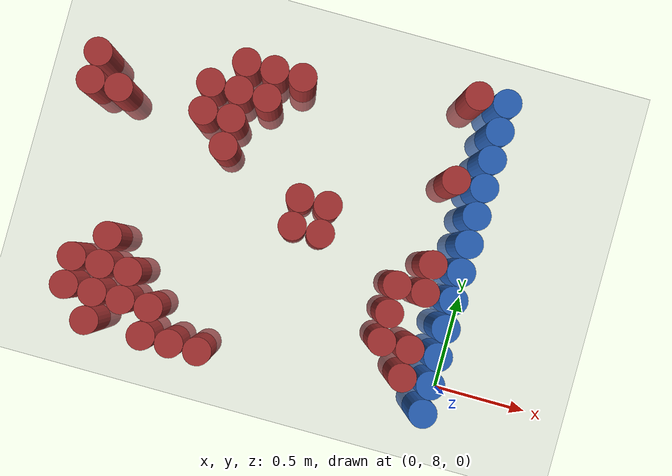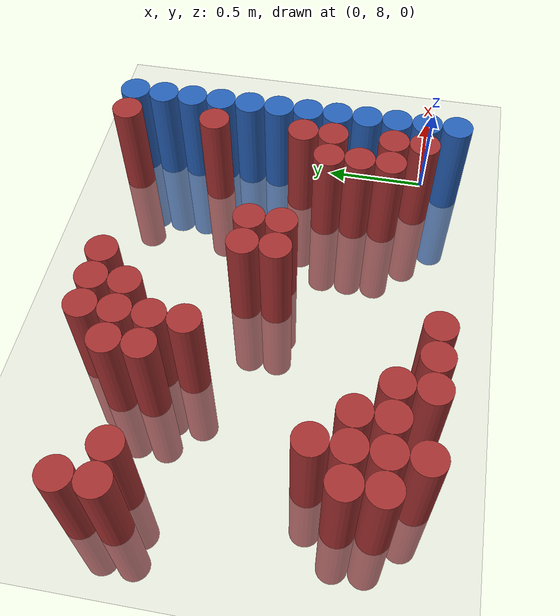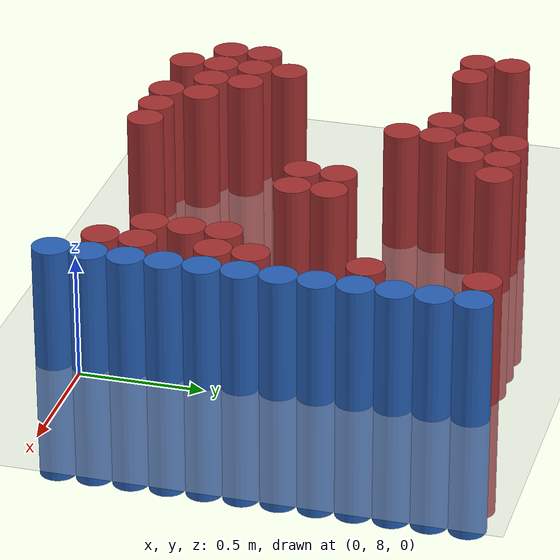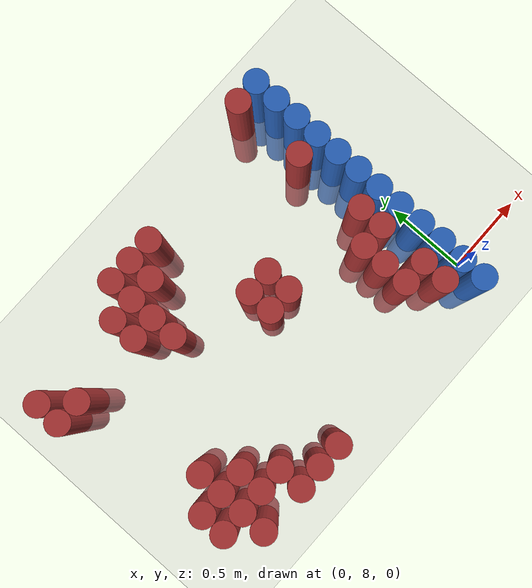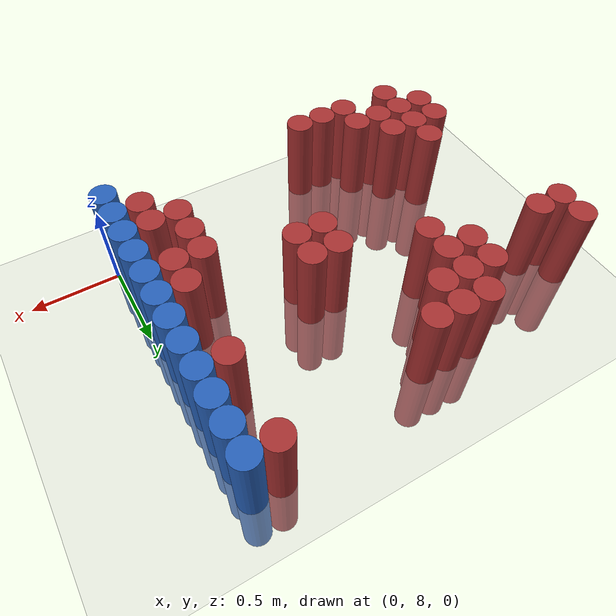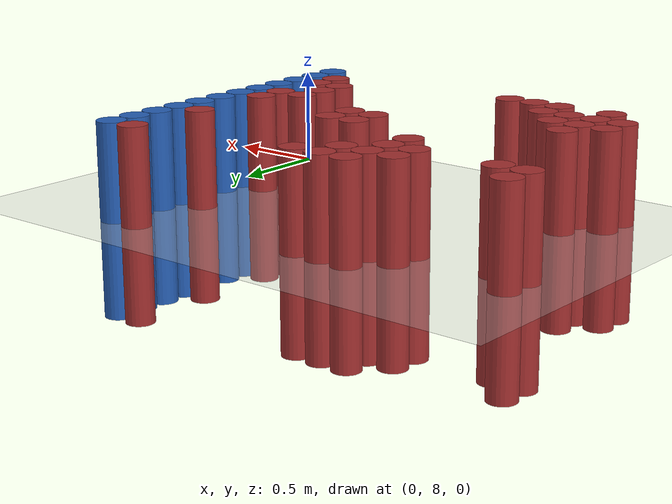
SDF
<sdf version="1.6">
 <world name="default">
  <model name="ground_plane">
   <static>1</static>
   <link name="link">
    <collision name="collision">
     <geometry><plane><normal>0 0 1</normal><size>100 100</size></plane></geometry>
     <surface><friction><ode><mu>100</mu><mu2>50</mu2></ode></friction></surface>
    </collision>
    <visual name="visual">
     <cast_shadows>0</cast_shadows>
     <geometry><plane><normal>0 0 1</normal><size>100 100</size></plane></geometry>
     <material>
      <script><uri>file://media/materials/scripts/gazebo.material</uri><name>Gazebo/Grey</name></script>
     </material>
    </visual>
   </link>
  </model>
  <model name="unit_cylinder_168">
   <static>1</static>
   <pose>-2.175000 9.075000 0.000000 0.000000 0.000000 0.000000</pose>
   <link name="link">
    <inertial>
     <mass>1</mass>
     <inertia><ixx>0.145833</ixx><ixy>0</ixy><ixz>0</ixz><iyy>0.145833</iyy><iyz>0</iyz><izz>0.125</izz></inertia>
    </inertial>
    <collision name="collision">
     <geometry><cylinder><radius>0.075000</radius><length>1</length></cylinder></geometry>
    </collision>
    <visual name="visual">
     <geometry><cylinder><radius>0.075000</radius><length>1</length></cylinder></geometry>
     <material>
      <ambient>0.648000 0.192000 0.192000 1</ambient>
      <diffuse>0.648000 0.192000 0.192000 1</diffuse>
     </material>
     <material>
      <script><name>Gazebo/Grey</name><uri>file://media/materials/scripts/gazebo.material</uri></script>
     </material>
    </visual>
   </link>
  </model>
  <model name="unit_cylinder_169">
   <static>1</static>
   <pose>-2.175000 9.225000 0.000000 0.000000 0.000000 0.000000</pose>
   <link name="link">
    <inertial>
     <mass>1</mass>
     <inertia><ixx>0.145833</ixx><ixy>0</ixy><ixz>0</ixz><iyy>0.145833</iyy><iyz>0</iyz><izz>0.125</izz></inertia>
    </inertial>
    <collision name="collision">
     <geometry><cylinder><radius>0.075000</radius><length>1</length></cylinder></geometry>
    </collision>
    <visual name="visual">
     <geometry><cylinder><radius>0.075000</radius><length>1</length></cylinder></geometry>
     <material>
      <ambient>0.648000 0.192000 0.192000 1</ambient>
      <diffuse>0.648000 0.192000 0.192000 1</diffuse>
     </material>
     <material>
      <script><name>Gazebo/Grey</name><uri>file://media/materials/scripts/gazebo.material</uri></script>
     </material>
    </visual>
   </link>
  </model>
  <model name="unit_cylinder_170">
   <static>1</static>
   <pose>-2.025000 8.025000 0.000000 0.000000 0.000000 0.000000</pose>
   <link name="link">
    <inertial>
     <mass>1</mass>
     <inertia><ixx>0.145833</ixx><ixy>0</ixy><ixz>0</ixz><iyy>0.145833</iyy><iyz>0</iyz><izz>0.125</izz></inertia>
    </inertial>
    <collision name="collision">
     <geometry><cylinder><radius>0.075000</radius><length>1</length></cylinder></geometry>
    </collision>
    <visual name="visual">
     <geometry><cylinder><radius>0.075000</radius><length>1</length></cylinder></geometry>
     <material>
      <ambient>0.648000 0.192000 0.192000 1</ambient>
      <diffuse>0.648000 0.192000 0.192000 1</diffuse>
     </material>
     <material>
      <script><name>Gazebo/Grey</name><uri>file://media/materials/scripts/gazebo.material</uri></script>
     </material>
    </visual>
   </link>
  </model>
  <model name="unit_cylinder_171">
   <static>1</static>
   <pose>-2.025000 8.175000 0.000000 0.000000 0.000000 0.000000</pose>
   <link name="link">
    <inertial>
     <mass>1</mass>
     <inertia><ixx>0.145833</ixx><ixy>0</ixy><ixz>0</ixz><iyy>0.145833</iyy><iyz>0</iyz><izz>0.125</izz></inertia>
    </inertial>
    <collision name="collision">
     <geometry><cylinder><radius>0.075000</radius><length>1</length></cylinder></geometry>
    </collision>
    <visual name="visual">
     <geometry><cylinder><radius>0.075000</radius><length>1</length></cylinder></geometry>
     <material>
      <ambient>0.648000 0.192000 0.192000 1</ambient>
      <diffuse>0.648000 0.192000 0.192000 1</diffuse>
     </material>
     <material>
      <script><name>Gazebo/Grey</name><uri>file://media/materials/scripts/gazebo.material</uri></script>
     </material>
    </visual>
   </link>
  </model>
  <model name="unit_cylinder_172">
   <static>1</static>
   <pose>-2.025000 9.075000 0.000000 0.000000 0.000000 0.000000</pose>
   <link name="link">
    <inertial>
     <mass>1</mass>
     <inertia><ixx>0.145833</ixx><ixy>0</ixy><ixz>0</ixz><iyy>0.145833</iyy><iyz>0</iyz><izz>0.125</izz></inertia>
    </inertial>
    <collision name="collision">
     <geometry><cylinder><radius>0.075000</radius><length>1</length></cylinder></geometry>
    </collision>
    <visual name="visual">
     <geometry><cylinder><radius>0.075000</radius><length>1</length></cylinder></geometry>
     <material>
      <ambient>0.648000 0.192000 0.192000 1</ambient>
      <diffuse>0.648000 0.192000 0.192000 1</diffuse>
     </material>
     <material>
      <script><name>Gazebo/Grey</name><uri>file://media/materials/scripts/gazebo.material</uri></script>
     </material>
    </visual>
   </link>
  </model>
  <model name="unit_cylinder_177">
   <static>1</static>
   <pose>-1.875000 7.875000 0.000000 0.000000 0.000000 0.000000</pose>
   <link name="link">
    <inertial>
     <mass>1</mass>
     <inertia><ixx>0.145833</ixx><ixy>0</ixy><ixz>0</ixz><iyy>0.145833</iyy><iyz>0</iyz><izz>0.125</izz></inertia>
    </inertial>
    <collision name="collision">
     <geometry><cylinder><radius>0.075000</radius><length>1</length></cylinder></geometry>
    </collision>
    <visual name="visual">
     <geometry><cylinder><radius>0.075000</radius><length>1</length></cylinder></geometry>
     <material>
      <ambient>0.648000 0.192000 0.192000 1</ambient>
      <diffuse>0.648000 0.192000 0.192000 1</diffuse>
     </material>
     <material>
      <script><name>Gazebo/Grey</name><uri>file://media/materials/scripts/gazebo.material</uri></script>
     </material>
    </visual>
   </link>
  </model>
  <model name="unit_cylinder_178">
   <static>1</static>
   <pose>-1.875000 8.025000 0.000000 0.000000 0.000000 0.000000</pose>
   <link name="link">
    <inertial>
     <mass>1</mass>
     <inertia><ixx>0.145833</ixx><ixy>0</ixy><ixz>0</ixz><iyy>0.145833</iyy><iyz>0</iyz><izz>0.125</izz></inertia>
    </inertial>
    <collision name="collision">
     <geometry><cylinder><radius>0.075000</radius><length>1</length></cylinder></geometry>
    </collision>
    <visual name="visual">
     <geometry><cylinder><radius>0.075000</radius><length>1</length></cylinder></geometry>
     <material>
      <ambient>0.648000 0.192000 0.192000 1</ambient>
      <diffuse>0.648000 0.192000 0.192000 1</diffuse>
     </material>
     <material>
      <script><name>Gazebo/Grey</name><uri>file://media/materials/scripts/gazebo.material</uri></script>
     </material>
    </visual>
   </link>
  </model>
  <model name="unit_cylinder_179">
   <static>1</static>
   <pose>-1.875000 8.175000 0.000000 0.000000 0.000000 0.000000</pose>
   <link name="link">
    <inertial>
     <mass>1</mass>
     <inertia><ixx>0.145833</ixx><ixy>0</ixy><ixz>0</ixz><iyy>0.145833</iyy><iyz>0</iyz><izz>0.125</izz></inertia>
    </inertial>
    <collision name="collision">
     <geometry><cylinder><radius>0.075000</radius><length>1</length></cylinder></geometry>
    </collision>
    <visual name="visual">
     <geometry><cylinder><radius>0.075000</radius><length>1</length></cylinder></geometry>
     <material>
      <ambient>0.648000 0.192000 0.192000 1</ambient>
      <diffuse>0.648000 0.192000 0.192000 1</diffuse>
     </material>
     <material>
      <script><name>Gazebo/Grey</name><uri>file://media/materials/scripts/gazebo.material</uri></script>
     </material>
    </visual>
   </link>
  </model>
  <model name="unit_cylinder_180">
   <static>1</static>
   <pose>-1.875000 8.325000 0.000000 0.000000 0.000000 0.000000</pose>
   <link name="link">
    <inertial>
     <mass>1</mass>
     <inertia><ixx>0.145833</ixx><ixy>0</ixy><ixz>0</ixz><iyy>0.145833</iyy><iyz>0</iyz><izz>0.125</izz></inertia>
    </inertial>
    <collision name="collision">
     <geometry><cylinder><radius>0.075000</radius><length>1</length></cylinder></geometry>
    </collision>
    <visual name="visual">
     <geometry><cylinder><radius>0.075000</radius><length>1</length></cylinder></geometry>
     <material>
      <ambient>0.648000 0.192000 0.192000 1</ambient>
      <diffuse>0.648000 0.192000 0.192000 1</diffuse>
     </material>
     <material>
      <script><name>Gazebo/Grey</name><uri>file://media/materials/scripts/gazebo.material</uri></script>
     </material>
    </visual>
   </link>
  </model>
  <model name="unit_cylinder_188">
   <static>1</static>
   <pose>-1.725000 8.025000 0.000000 0.000000 0.000000 0.000000</pose>
   <link name="link">
    <inertial>
     <mass>1</mass>
     <inertia><ixx>0.145833</ixx><ixy>0</ixy><ixz>0</ixz><iyy>0.145833</iyy><iyz>0</iyz><izz>0.125</izz></inertia>
    </inertial>
    <collision name="collision">
     <geometry><cylinder><radius>0.075000</radius><length>1</length></cylinder></geometry>
    </collision>
    <visual name="visual">
     <geometry><cylinder><radius>0.075000</radius><length>1</length></cylinder></geometry>
     <material>
      <ambient>0.648000 0.192000 0.192000 1</ambient>
      <diffuse>0.648000 0.192000 0.192000 1</diffuse>
     </material>
     <material>
      <script><name>Gazebo/Grey</name><uri>file://media/materials/scripts/gazebo.material</uri></script>
     </material>
    </visual>
   </link>
  </model>
  <model name="unit_cylinder_189">
   <static>1</static>
   <pose>-1.725000 8.175000 0.000000 0.000000 0.000000 0.000000</pose>
   <link name="link">
    <inertial>
     <mass>1</mass>
     <inertia><ixx>0.145833</ixx><ixy>0</ixy><ixz>0</ixz><iyy>0.145833</iyy><iyz>0</iyz><izz>0.125</izz></inertia>
    </inertial>
    <collision name="collision">
     <geometry><cylinder><radius>0.075000</radius><length>1</length></cylinder></geometry>
    </collision>
    <visual name="visual">
     <geometry><cylinder><radius>0.075000</radius><length>1</length></cylinder></geometry>
     <material>
      <ambient>0.648000 0.192000 0.192000 1</ambient>
      <diffuse>0.648000 0.192000 0.192000 1</diffuse>
     </material>
     <material>
      <script><name>Gazebo/Grey</name><uri>file://media/materials/scripts/gazebo.material</uri></script>
     </material>
    </visual>
   </link>
  </model>
  <model name="unit_cylinder_197">
   <static>1</static>
   <pose>-1.575000 7.875000 0.000000 0.000000 0.000000 0.000000</pose>
   <link name="link">
    <inertial>
     <mass>1</mass>
     <inertia><ixx>0.145833</ixx><ixy>0</ixy><ixz>0</ixz><iyy>0.145833</iyy><iyz>0</iyz><izz>0.125</izz></inertia>
    </inertial>
    <collision name="collision">
     <geometry><cylinder><radius>0.075000</radius><length>1</length></cylinder></geometry>
    </collision>
    <visual name="visual">
     <geometry><cylinder><radius>0.075000</radius><length>1</length></cylinder></geometry>
     <material>
      <ambient>0.648000 0.192000 0.192000 1</ambient>
      <diffuse>0.648000 0.192000 0.192000 1</diffuse>
     </material>
     <material>
      <script><name>Gazebo/Grey</name><uri>file://media/materials/scripts/gazebo.material</uri></script>
     </material>
    </visual>
   </link>
  </model>
  <model name="unit_cylinder_198">
   <static>1</static>
   <pose>-1.575000 8.025000 0.000000 0.000000 0.000000 0.000000</pose>
   <link name="link">
    <inertial>
     <mass>1</mass>
     <inertia><ixx>0.145833</ixx><ixy>0</ixy><ixz>0</ixz><iyy>0.145833</iyy><iyz>0</iyz><izz>0.125</izz></inertia>
    </inertial>
    <collision name="collision">
     <geometry><cylinder><radius>0.075000</radius><length>1</length></cylinder></geometry>
    </collision>
    <visual name="visual">
     <geometry><cylinder><radius>0.075000</radius><length>1</length></cylinder></geometry>
     <material>
      <ambient>0.648000 0.192000 0.192000 1</ambient>
      <diffuse>0.648000 0.192000 0.192000 1</diffuse>
     </material>
     <material>
      <script><name>Gazebo/Grey</name><uri>file://media/materials/scripts/gazebo.material</uri></script>
     </material>
    </visual>
   </link>
  </model>
  <model name="unit_cylinder_199">
   <static>1</static>
   <pose>-1.575000 9.075000 0.000000 0.000000 0.000000 0.000000</pose>
   <link name="link">
    <inertial>
     <mass>1</mass>
     <inertia><ixx>0.145833</ixx><ixy>0</ixy><ixz>0</ixz><iyy>0.145833</iyy><iyz>0</iyz><izz>0.125</izz></inertia>
    </inertial>
    <collision name="collision">
     <geometry><cylinder><radius>0.075000</radius><length>1</length></cylinder></geometry>
    </collision>
    <visual name="visual">
     <geometry><cylinder><radius>0.075000</radius><length>1</length></cylinder></geometry>
     <material>
      <ambient>0.648000 0.192000 0.192000 1</ambient>
      <diffuse>0.648000 0.192000 0.192000 1</diffuse>
     </material>
     <material>
      <script><name>Gazebo/Grey</name><uri>file://media/materials/scripts/gazebo.material</uri></script>
     </material>
    </visual>
   </link>
  </model>
  <model name="unit_cylinder_200">
   <static>1</static>
   <pose>-1.575000 9.225000 0.000000 0.000000 0.000000 0.000000</pose>
   <link name="link">
    <inertial>
     <mass>1</mass>
     <inertia><ixx>0.145833</ixx><ixy>0</ixy><ixz>0</ixz><iyy>0.145833</iyy><iyz>0</iyz><izz>0.125</izz></inertia>
    </inertial>
    <collision name="collision">
     <geometry><cylinder><radius>0.075000</radius><length>1</length></cylinder></geometry>
    </collision>
    <visual name="visual">
     <geometry><cylinder><radius>0.075000</radius><length>1</length></cylinder></geometry>
     <material>
      <ambient>0.648000 0.192000 0.192000 1</ambient>
      <diffuse>0.648000 0.192000 0.192000 1</diffuse>
     </material>
     <material>
      <script><name>Gazebo/Grey</name><uri>file://media/materials/scripts/gazebo.material</uri></script>
     </material>
    </visual>
   </link>
  </model>
  <model name="unit_cylinder_205">
   <static>1</static>
   <pose>-1.425000 7.875000 0.000000 0.000000 0.000000 0.000000</pose>
   <link name="link">
    <inertial>
     <mass>1</mass>
     <inertia><ixx>0.145833</ixx><ixy>0</ixy><ixz>0</ixz><iyy>0.145833</iyy><iyz>0</iyz><izz>0.125</izz></inertia>
    </inertial>
    <collision name="collision">
     <geometry><cylinder><radius>0.075000</radius><length>1</length></cylinder></geometry>
    </collision>
    <visual name="visual">
     <geometry><cylinder><radius>0.075000</radius><length>1</length></cylinder></geometry>
     <material>
      <ambient>0.648000 0.192000 0.192000 1</ambient>
      <diffuse>0.648000 0.192000 0.192000 1</diffuse>
     </material>
     <material>
      <script><name>Gazebo/Grey</name><uri>file://media/materials/scripts/gazebo.material</uri></script>
     </material>
    </visual>
   </link>
  </model>
  <model name="unit_cylinder_206">
   <static>1</static>
   <pose>-1.425000 8.925000 0.000000 0.000000 0.000000 0.000000</pose>
   <link name="link">
    <inertial>
     <mass>1</mass>
     <inertia><ixx>0.145833</ixx><ixy>0</ixy><ixz>0</ixz><iyy>0.145833</iyy><iyz>0</iyz><izz>0.125</izz></inertia>
    </inertial>
    <collision name="collision">
     <geometry><cylinder><radius>0.075000</radius><length>1</length></cylinder></geometry>
    </collision>
    <visual name="visual">
     <geometry><cylinder><radius>0.075000</radius><length>1</length></cylinder></geometry>
     <material>
      <ambient>0.648000 0.192000 0.192000 1</ambient>
      <diffuse>0.648000 0.192000 0.192000 1</diffuse>
     </material>
     <material>
      <script><name>Gazebo/Grey</name><uri>file://media/materials/scripts/gazebo.material</uri></script>
     </material>
    </visual>
   </link>
  </model>
  <model name="unit_cylinder_207">
   <static>1</static>
   <pose>-1.425000 9.075000 0.000000 0.000000 0.000000 0.000000</pose>
   <link name="link">
    <inertial>
     <mass>1</mass>
     <inertia><ixx>0.145833</ixx><ixy>0</ixy><ixz>0</ixz><iyy>0.145833</iyy><iyz>0</iyz><izz>0.125</izz></inertia>
    </inertial>
    <collision name="collision">
     <geometry><cylinder><radius>0.075000</radius><length>1</length></cylinder></geometry>
    </collision>
    <visual name="visual">
     <geometry><cylinder><radius>0.075000</radius><length>1</length></cylinder></geometry>
     <material>
      <ambient>0.648000 0.192000 0.192000 1</ambient>
      <diffuse>0.648000 0.192000 0.192000 1</diffuse>
     </material>
     <material>
      <script><name>Gazebo/Grey</name><uri>file://media/materials/scripts/gazebo.material</uri></script>
     </material>
    </visual>
   </link>
  </model>
  <model name="unit_cylinder_208">
   <static>1</static>
   <pose>-1.425000 9.225000 0.000000 0.000000 0.000000 0.000000</pose>
   <link name="link">
    <inertial>
     <mass>1</mass>
     <inertia><ixx>0.145833</ixx><ixy>0</ixy><ixz>0</ixz><iyy>0.145833</iyy><iyz>0</iyz><izz>0.125</izz></inertia>
    </inertial>
    <collision name="collision">
     <geometry><cylinder><radius>0.075000</radius><length>1</length></cylinder></geometry>
    </collision>
    <visual name="visual">
     <geometry><cylinder><radius>0.075000</radius><length>1</length></cylinder></geometry>
     <material>
      <ambient>0.648000 0.192000 0.192000 1</ambient>
      <diffuse>0.648000 0.192000 0.192000 1</diffuse>
     </material>
     <material>
      <script><name>Gazebo/Grey</name><uri>file://media/materials/scripts/gazebo.material</uri></script>
     </material>
    </visual>
   </link>
  </model>
  <model name="unit_cylinder_209">
   <static>1</static>
   <pose>-1.425000 9.375000 0.000000 0.000000 0.000000 0.000000</pose>
   <link name="link">
    <inertial>
     <mass>1</mass>
     <inertia><ixx>0.145833</ixx><ixy>0</ixy><ixz>0</ixz><iyy>0.145833</iyy><iyz>0</iyz><izz>0.125</izz></inertia>
    </inertial>
    <collision name="collision">
     <geometry><cylinder><radius>0.075000</radius><length>1</length></cylinder></geometry>
    </collision>
    <visual name="visual">
     <geometry><cylinder><radius>0.075000</radius><length>1</length></cylinder></geometry>
     <material>
      <ambient>0.648000 0.192000 0.192000 1</ambient>
      <diffuse>0.648000 0.192000 0.192000 1</diffuse>
     </material>
     <material>
      <script><name>Gazebo/Grey</name><uri>file://media/materials/scripts/gazebo.material</uri></script>
     </material>
    </visual>
   </link>
  </model>
  <model name="unit_cylinder_217">
   <static>1</static>
   <pose>-1.275000 7.875000 0.000000 0.000000 0.000000 0.000000</pose>
   <link name="link">
    <inertial>
     <mass>1</mass>
     <inertia><ixx>0.145833</ixx><ixy>0</ixy><ixz>0</ixz><iyy>0.145833</iyy><iyz>0</iyz><izz>0.125</izz></inertia>
    </inertial>
    <collision name="collision">
     <geometry><cylinder><radius>0.075000</radius><length>1</length></cylinder></geometry>
    </collision>
    <visual name="visual">
     <geometry><cylinder><radius>0.075000</radius><length>1</length></cylinder></geometry>
     <material>
      <ambient>0.648000 0.192000 0.192000 1</ambient>
      <diffuse>0.648000 0.192000 0.192000 1</diffuse>
     </material>
     <material>
      <script><name>Gazebo/Grey</name><uri>file://media/materials/scripts/gazebo.material</uri></script>
     </material>
    </visual>
   </link>
  </model>
  <model name="unit_cylinder_218">
   <static>1</static>
   <pose>-1.275000 9.225000 0.000000 0.000000 0.000000 0.000000</pose>
   <link name="link">
    <inertial>
     <mass>1</mass>
     <inertia><ixx>0.145833</ixx><ixy>0</ixy><ixz>0</ixz><iyy>0.145833</iyy><iyz>0</iyz><izz>0.125</izz></inertia>
    </inertial>
    <collision name="collision">
     <geometry><cylinder><radius>0.075000</radius><length>1</length></cylinder></geometry>
    </collision>
    <visual name="visual">
     <geometry><cylinder><radius>0.075000</radius><length>1</length></cylinder></geometry>
     <material>
      <ambient>0.648000 0.192000 0.192000 1</ambient>
      <diffuse>0.648000 0.192000 0.192000 1</diffuse>
     </material>
     <material>
      <script><name>Gazebo/Grey</name><uri>file://media/materials/scripts/gazebo.material</uri></script>
     </material>
    </visual>
   </link>
  </model>
  <model name="unit_cylinder_219">
   <static>1</static>
   <pose>-1.275000 9.375000 0.000000 0.000000 0.000000 0.000000</pose>
   <link name="link">
    <inertial>
     <mass>1</mass>
     <inertia><ixx>0.145833</ixx><ixy>0</ixy><ixz>0</ixz><iyy>0.145833</iyy><iyz>0</iyz><izz>0.125</izz></inertia>
    </inertial>
    <collision name="collision">
     <geometry><cylinder><radius>0.075000</radius><length>1</length></cylinder></geometry>
    </collision>
    <visual name="visual">
     <geometry><cylinder><radius>0.075000</radius><length>1</length></cylinder></geometry>
     <material>
      <ambient>0.648000 0.192000 0.192000 1</ambient>
      <diffuse>0.648000 0.192000 0.192000 1</diffuse>
     </material>
     <material>
      <script><name>Gazebo/Grey</name><uri>file://media/materials/scripts/gazebo.material</uri></script>
     </material>
    </visual>
   </link>
  </model>
  <model name="unit_cylinder_227">
   <static>1</static>
   <pose>-1.125000 9.375000 0.000000 0.000000 0.000000 0.000000</pose>
   <link name="link">
    <inertial>
     <mass>1</mass>
     <inertia><ixx>0.145833</ixx><ixy>0</ixy><ixz>0</ixz><iyy>0.145833</iyy><iyz>0</iyz><izz>0.125</izz></inertia>
    </inertial>
    <collision name="collision">
     <geometry><cylinder><radius>0.075000</radius><length>1</length></cylinder></geometry>
    </collision>
    <visual name="visual">
     <geometry><cylinder><radius>0.075000</radius><length>1</length></cylinder></geometry>
     <material>
      <ambient>0.648000 0.192000 0.192000 1</ambient>
      <diffuse>0.648000 0.192000 0.192000 1</diffuse>
     </material>
     <material>
      <script><name>Gazebo/Grey</name><uri>file://media/materials/scripts/gazebo.material</uri></script>
     </material>
    </visual>
   </link>
  </model>
  <model name="unit_cylinder_229">
   <static>1</static>
   <pose>-0.975000 8.625000 0.000000 0.000000 0.000000 0.000000</pose>
   <link name="link">
    <inertial>
     <mass>1</mass>
     <inertia><ixx>0.145833</ixx><ixy>0</ixy><ixz>0</ixz><iyy>0.145833</iyy><iyz>0</iyz><izz>0.125</izz></inertia>
    </inertial>
    <collision name="collision">
     <geometry><cylinder><radius>0.075000</radius><length>1</length></cylinder></geometry>
    </collision>
    <visual name="visual">
     <geometry><cylinder><radius>0.075000</radius><length>1</length></cylinder></geometry>
     <material>
      <ambient>0.648000 0.192000 0.192000 1</ambient>
      <diffuse>0.648000 0.192000 0.192000 1</diffuse>
     </material>
     <material>
      <script><name>Gazebo/Grey</name><uri>file://media/materials/scripts/gazebo.material</uri></script>
     </material>
    </visual>
   </link>
  </model>
  <model name="unit_cylinder_230">
   <static>1</static>
   <pose>-0.975000 8.775000 0.000000 0.000000 0.000000 0.000000</pose>
   <link name="link">
    <inertial>
     <mass>1</mass>
     <inertia><ixx>0.145833</ixx><ixy>0</ixy><ixz>0</ixz><iyy>0.145833</iyy><iyz>0</iyz><izz>0.125</izz></inertia>
    </inertial>
    <collision name="collision">
     <geometry><cylinder><radius>0.075000</radius><length>1</length></cylinder></geometry>
    </collision>
    <visual name="visual">
     <geometry><cylinder><radius>0.075000</radius><length>1</length></cylinder></geometry>
     <material>
      <ambient>0.648000 0.192000 0.192000 1</ambient>
      <diffuse>0.648000 0.192000 0.192000 1</diffuse>
     </material>
     <material>
      <script><name>Gazebo/Grey</name><uri>file://media/materials/scripts/gazebo.material</uri></script>
     </material>
    </visual>
   </link>
  </model>
  <model name="unit_cylinder_232">
   <static>1</static>
   <pose>-0.825000 8.625000 0.000000 0.000000 0.000000 0.000000</pose>
   <link name="link">
    <inertial>
     <mass>1</mass>
     <inertia><ixx>0.145833</ixx><ixy>0</ixy><ixz>0</ixz><iyy>0.145833</iyy><iyz>0</iyz><izz>0.125</izz></inertia>
    </inertial>
    <collision name="collision">
     <geometry><cylinder><radius>0.075000</radius><length>1</length></cylinder></geometry>
    </collision>
    <visual name="visual">
     <geometry><cylinder><radius>0.075000</radius><length>1</length></cylinder></geometry>
     <material>
      <ambient>0.648000 0.192000 0.192000 1</ambient>
      <diffuse>0.648000 0.192000 0.192000 1</diffuse>
     </material>
     <material>
      <script><name>Gazebo/Grey</name><uri>file://media/materials/scripts/gazebo.material</uri></script>
     </material>
    </visual>
   </link>
  </model>
  <model name="unit_cylinder_233">
   <static>1</static>
   <pose>-0.825000 8.775000 0.000000 0.000000 0.000000 0.000000</pose>
   <link name="link">
    <inertial>
     <mass>1</mass>
     <inertia><ixx>0.145833</ixx><ixy>0</ixy><ixz>0</ixz><iyy>0.145833</iyy><iyz>0</iyz><izz>0.125</izz></inertia>
    </inertial>
    <collision name="collision">
     <geometry><cylinder><radius>0.075000</radius><length>1</length></cylinder></geometry>
    </collision>
    <visual name="visual">
     <geometry><cylinder><radius>0.075000</radius><length>1</length></cylinder></geometry>
     <material>
      <ambient>0.648000 0.192000 0.192000 1</ambient>
      <diffuse>0.648000 0.192000 0.192000 1</diffuse>
     </material>
     <material>
      <script><name>Gazebo/Grey</name><uri>file://media/materials/scripts/gazebo.material</uri></script>
     </material>
    </visual>
   </link>
  </model>
  <model name="unit_cylinder_247">
   <static>1</static>
   <pose>-0.375000 8.175000 0.000000 0.000000 0.000000 0.000000</pose>
   <link name="link">
    <inertial>
     <mass>1</mass>
     <inertia><ixx>0.145833</ixx><ixy>0</ixy><ixz>0</ixz><iyy>0.145833</iyy><iyz>0</iyz><izz>0.125</izz></inertia>
    </inertial>
    <collision name="collision">
     <geometry><cylinder><radius>0.075000</radius><length>1</length></cylinder></geometry>
    </collision>
    <visual name="visual">
     <geometry><cylinder><radius>0.075000</radius><length>1</length></cylinder></geometry>
     <material>
      <ambient>0.648000 0.192000 0.192000 1</ambient>
      <diffuse>0.648000 0.192000 0.192000 1</diffuse>
     </material>
     <material>
      <script><name>Gazebo/Grey</name><uri>file://media/materials/scripts/gazebo.material</uri></script>
     </material>
    </visual>
   </link>
  </model>
  <model name="unit_cylinder_248">
   <static>1</static>
   <pose>-0.375000 8.325000 0.000000 0.000000 0.000000 0.000000</pose>
   <link name="link">
    <inertial>
     <mass>1</mass>
     <inertia><ixx>0.145833</ixx><ixy>0</ixy><ixz>0</ixz><iyy>0.145833</iyy><iyz>0</iyz><izz>0.125</izz></inertia>
    </inertial>
    <collision name="collision">
     <geometry><cylinder><radius>0.075000</radius><length>1</length></cylinder></geometry>
    </collision>
    <visual name="visual">
     <geometry><cylinder><radius>0.075000</radius><length>1</length></cylinder></geometry>
     <material>
      <ambient>0.648000 0.192000 0.192000 1</ambient>
      <diffuse>0.648000 0.192000 0.192000 1</diffuse>
     </material>
     <material>
      <script><name>Gazebo/Grey</name><uri>file://media/materials/scripts/gazebo.material</uri></script>
     </material>
    </visual>
   </link>
  </model>
  <model name="unit_cylinder_249">
   <static>1</static>
   <pose>-0.375000 8.475000 0.000000 0.000000 0.000000 0.000000</pose>
   <link name="link">
    <inertial>
     <mass>1</mass>
     <inertia><ixx>0.145833</ixx><ixy>0</ixy><ixz>0</ixz><iyy>0.145833</iyy><iyz>0</iyz><izz>0.125</izz></inertia>
    </inertial>
    <collision name="collision">
     <geometry><cylinder><radius>0.075000</radius><length>1</length></cylinder></geometry>
    </collision>
    <visual name="visual">
     <geometry><cylinder><radius>0.075000</radius><length>1</length></cylinder></geometry>
     <material>
      <ambient>0.648000 0.192000 0.192000 1</ambient>
      <diffuse>0.648000 0.192000 0.192000 1</diffuse>
     </material>
     <material>
      <script><name>Gazebo/Grey</name><uri>file://media/materials/scripts/gazebo.material</uri></script>
     </material>
    </visual>
   </link>
  </model>
  <model name="unit_cylinder_258">
   <static>1</static>
   <pose>-0.225000 8.025000 0.000000 0.000000 0.000000 0.000000</pose>
   <link name="link">
    <inertial>
     <mass>1</mass>
     <inertia><ixx>0.145833</ixx><ixy>0</ixy><ixz>0</ixz><iyy>0.145833</iyy><iyz>0</iyz><izz>0.125</izz></inertia>
    </inertial>
    <collision name="collision">
     <geometry><cylinder><radius>0.075000</radius><length>1</length></cylinder></geometry>
    </collision>
    <visual name="visual">
     <geometry><cylinder><radius>0.075000</radius><length>1</length></cylinder></geometry>
     <material>
      <ambient>0.648000 0.192000 0.192000 1</ambient>
      <diffuse>0.648000 0.192000 0.192000 1</diffuse>
     </material>
     <material>
      <script><name>Gazebo/Grey</name><uri>file://media/materials/scripts/gazebo.material</uri></script>
     </material>
    </visual>
   </link>
  </model>
  <model name="unit_cylinder_259">
   <static>1</static>
   <pose>-0.225000 8.175000 0.000000 0.000000 0.000000 0.000000</pose>
   <link name="link">
    <inertial>
     <mass>1</mass>
     <inertia><ixx>0.145833</ixx><ixy>0</ixy><ixz>0</ixz><iyy>0.145833</iyy><iyz>0</iyz><izz>0.125</izz></inertia>
    </inertial>
    <collision name="collision">
     <geometry><cylinder><radius>0.075000</radius><length>1</length></cylinder></geometry>
    </collision>
    <visual name="visual">
     <geometry><cylinder><radius>0.075000</radius><length>1</length></cylinder></geometry>
     <material>
      <ambient>0.648000 0.192000 0.192000 1</ambient>
      <diffuse>0.648000 0.192000 0.192000 1</diffuse>
     </material>
     <material>
      <script><name>Gazebo/Grey</name><uri>file://media/materials/scripts/gazebo.material</uri></script>
     </material>
    </visual>
   </link>
  </model>
  <model name="unit_cylinder_260">
   <static>1</static>
   <pose>-0.225000 8.475000 0.000000 0.000000 0.000000 0.000000</pose>
   <link name="link">
    <inertial>
     <mass>1</mass>
     <inertia><ixx>0.145833</ixx><ixy>0</ixy><ixz>0</ixz><iyy>0.145833</iyy><iyz>0</iyz><izz>0.125</izz></inertia>
    </inertial>
    <collision name="collision">
     <geometry><cylinder><radius>0.075000</radius><length>1</length></cylinder></geometry>
    </collision>
    <visual name="visual">
     <geometry><cylinder><radius>0.075000</radius><length>1</length></cylinder></geometry>
     <material>
      <ambient>0.648000 0.192000 0.192000 1</ambient>
      <diffuse>0.648000 0.192000 0.192000 1</diffuse>
     </material>
     <material>
      <script><name>Gazebo/Grey</name><uri>file://media/materials/scripts/gazebo.material</uri></script>
     </material>
    </visual>
   </link>
  </model>
  <model name="unit_cylinder_261">
   <static>1</static>
   <pose>-0.225000 8.625000 0.000000 0.000000 0.000000 0.000000</pose>
   <link name="link">
    <inertial>
     <mass>1</mass>
     <inertia><ixx>0.145833</ixx><ixy>0</ixy><ixz>0</ixz><iyy>0.145833</iyy><iyz>0</iyz><izz>0.125</izz></inertia>
    </inertial>
    <collision name="collision">
     <geometry><cylinder><radius>0.075000</radius><length>1</length></cylinder></geometry>
    </collision>
    <visual name="visual">
     <geometry><cylinder><radius>0.075000</radius><length>1</length></cylinder></geometry>
     <material>
      <ambient>0.648000 0.192000 0.192000 1</ambient>
      <diffuse>0.648000 0.192000 0.192000 1</diffuse>
     </material>
     <material>
      <script><name>Gazebo/Grey</name><uri>file://media/materials/scripts/gazebo.material</uri></script>
     </material>
    </visual>
   </link>
  </model>
  <model name="unit_cylinder_262">
   <static>1</static>
   <pose>-0.225000 9.075000 0.000000 0.000000 0.000000 0.000000</pose>
   <link name="link">
    <inertial>
     <mass>1</mass>
     <inertia><ixx>0.145833</ixx><ixy>0</ixy><ixz>0</ixz><iyy>0.145833</iyy><iyz>0</iyz><izz>0.125</izz></inertia>
    </inertial>
    <collision name="collision">
     <geometry><cylinder><radius>0.075000</radius><length>1</length></cylinder></geometry>
    </collision>
    <visual name="visual">
     <geometry><cylinder><radius>0.075000</radius><length>1</length></cylinder></geometry>
     <material>
      <ambient>0.648000 0.192000 0.192000 1</ambient>
      <diffuse>0.648000 0.192000 0.192000 1</diffuse>
     </material>
     <material>
      <script><name>Gazebo/Grey</name><uri>file://media/materials/scripts/gazebo.material</uri></script>
     </material>
    </visual>
   </link>
  </model>
  <model name="unit_cylinder_263">
   <static>1</static>
   <pose>-0.225000 9.525000 0.000000 0.000000 0.000000 0.000000</pose>
   <link name="link">
    <inertial>
     <mass>1</mass>
     <inertia><ixx>0.145833</ixx><ixy>0</ixy><ixz>0</ixz><iyy>0.145833</iyy><iyz>0</iyz><izz>0.125</izz></inertia>
    </inertial>
    <collision name="collision">
     <geometry><cylinder><radius>0.075000</radius><length>1</length></cylinder></geometry>
    </collision>
    <visual name="visual">
     <geometry><cylinder><radius>0.075000</radius><length>1</length></cylinder></geometry>
     <material>
      <ambient>0.648000 0.192000 0.192000 1</ambient>
      <diffuse>0.648000 0.192000 0.192000 1</diffuse>
     </material>
     <material>
      <script><name>Gazebo/Grey</name><uri>file://media/materials/scripts/gazebo.material</uri></script>
     </material>
    </visual>
   </link>
  </model>
  <model name="unit_cylinder_282">
   <static>1</static>
   <pose>-0.075000 7.875000 0.000000 0.000000 0.000000 0.000000</pose>
   <link name="link">
    <inertial>
     <mass>1</mass>
     <inertia><ixx>0.145833</ixx><ixy>0</ixy><ixz>0</ixz><iyy>0.145833</iyy><iyz>0</iyz><izz>0.125</izz></inertia>
    </inertial>
    <collision name="collision">
     <geometry><cylinder><radius>0.075000</radius><length>1</length></cylinder></geometry>
    </collision>
    <visual name="visual">
     <geometry><cylinder><radius>0.075000</radius><length>1</length></cylinder></geometry>
     <material>
      <ambient>0.152000 0.379000 0.720000 1</ambient>
      <diffuse>0.152000 0.379000 0.720000 1</diffuse>
     </material>
     <material>
      <script><name>Gazebo/Grey</name><uri>file://media/materials/scripts/gazebo.material</uri></script>
     </material>
    </visual>
   </link>
  </model>
  <model name="unit_cylinder_283">
   <static>1</static>
   <pose>-0.075000 8.025000 0.000000 0.000000 0.000000 0.000000</pose>
   <link name="link">
    <inertial>
     <mass>1</mass>
     <inertia><ixx>0.145833</ixx><ixy>0</ixy><ixz>0</ixz><iyy>0.145833</iyy><iyz>0</iyz><izz>0.125</izz></inertia>
    </inertial>
    <collision name="collision">
     <geometry><cylinder><radius>0.075000</radius><length>1</length></cylinder></geometry>
    </collision>
    <visual name="visual">
     <geometry><cylinder><radius>0.075000</radius><length>1</length></cylinder></geometry>
     <material>
      <ambient>0.152000 0.379000 0.720000 1</ambient>
      <diffuse>0.152000 0.379000 0.720000 1</diffuse>
     </material>
     <material>
      <script><name>Gazebo/Grey</name><uri>file://media/materials/scripts/gazebo.material</uri></script>
     </material>
    </visual>
   </link>
  </model>
  <model name="unit_cylinder_284">
   <static>1</static>
   <pose>-0.075000 8.175000 0.000000 0.000000 0.000000 0.000000</pose>
   <link name="link">
    <inertial>
     <mass>1</mass>
     <inertia><ixx>0.145833</ixx><ixy>0</ixy><ixz>0</ixz><iyy>0.145833</iyy><iyz>0</iyz><izz>0.125</izz></inertia>
    </inertial>
    <collision name="collision">
     <geometry><cylinder><radius>0.075000</radius><length>1</length></cylinder></geometry>
    </collision>
    <visual name="visual">
     <geometry><cylinder><radius>0.075000</radius><length>1</length></cylinder></geometry>
     <material>
      <ambient>0.152000 0.379000 0.720000 1</ambient>
      <diffuse>0.152000 0.379000 0.720000 1</diffuse>
     </material>
     <material>
      <script><name>Gazebo/Grey</name><uri>file://media/materials/scripts/gazebo.material</uri></script>
     </material>
    </visual>
   </link>
  </model>
  <model name="unit_cylinder_285">
   <static>1</static>
   <pose>-0.075000 8.325000 0.000000 0.000000 0.000000 0.000000</pose>
   <link name="link">
    <inertial>
     <mass>1</mass>
     <inertia><ixx>0.145833</ixx><ixy>0</ixy><ixz>0</ixz><iyy>0.145833</iyy><iyz>0</iyz><izz>0.125</izz></inertia>
    </inertial>
    <collision name="collision">
     <geometry><cylinder><radius>0.075000</radius><length>1</length></cylinder></geometry>
    </collision>
    <visual name="visual">
     <geometry><cylinder><radius>0.075000</radius><length>1</length></cylinder></geometry>
     <material>
      <ambient>0.152000 0.379000 0.720000 1</ambient>
      <diffuse>0.152000 0.379000 0.720000 1</diffuse>
     </material>
     <material>
      <script><name>Gazebo/Grey</name><uri>file://media/materials/scripts/gazebo.material</uri></script>
     </material>
    </visual>
   </link>
  </model>
  <model name="unit_cylinder_286">
   <static>1</static>
   <pose>-0.075000 8.475000 0.000000 0.000000 0.000000 0.000000</pose>
   <link name="link">
    <inertial>
     <mass>1</mass>
     <inertia><ixx>0.145833</ixx><ixy>0</ixy><ixz>0</ixz><iyy>0.145833</iyy><iyz>0</iyz><izz>0.125</izz></inertia>
    </inertial>
    <collision name="collision">
     <geometry><cylinder><radius>0.075000</radius><length>1</length></cylinder></geometry>
    </collision>
    <visual name="visual">
     <geometry><cylinder><radius>0.075000</radius><length>1</length></cylinder></geometry>
     <material>
      <ambient>0.152000 0.379000 0.720000 1</ambient>
      <diffuse>0.152000 0.379000 0.720000 1</diffuse>
     </material>
     <material>
      <script><name>Gazebo/Grey</name><uri>file://media/materials/scripts/gazebo.material</uri></script>
     </material>
    </visual>
   </link>
  </model>
  <model name="unit_cylinder_287">
   <static>1</static>
   <pose>-0.075000 8.625000 0.000000 0.000000 0.000000 0.000000</pose>
   <link name="link">
    <inertial>
     <mass>1</mass>
     <inertia><ixx>0.145833</ixx><ixy>0</ixy><ixz>0</ixz><iyy>0.145833</iyy><iyz>0</iyz><izz>0.125</izz></inertia>
    </inertial>
    <collision name="collision">
     <geometry><cylinder><radius>0.075000</radius><length>1</length></cylinder></geometry>
    </collision>
    <visual name="visual">
     <geometry><cylinder><radius>0.075000</radius><length>1</length></cylinder></geometry>
     <material>
      <ambient>0.152000 0.379000 0.720000 1</ambient>
      <diffuse>0.152000 0.379000 0.720000 1</diffuse>
     </material>
     <material>
      <script><name>Gazebo/Grey</name><uri>file://media/materials/scripts/gazebo.material</uri></script>
     </material>
    </visual>
   </link>
  </model>
  <model name="unit_cylinder_288">
   <static>1</static>
   <pose>-0.075000 8.775000 0.000000 0.000000 0.000000 0.000000</pose>
   <link name="link">
    <inertial>
     <mass>1</mass>
     <inertia><ixx>0.145833</ixx><ixy>0</ixy><ixz>0</ixz><iyy>0.145833</iyy><iyz>0</iyz><izz>0.125</izz></inertia>
    </inertial>
    <collision name="collision">
     <geometry><cylinder><radius>0.075000</radius><length>1</length></cylinder></geometry>
    </collision>
    <visual name="visual">
     <geometry><cylinder><radius>0.075000</radius><length>1</length></cylinder></geometry>
     <material>
      <ambient>0.152000 0.379000 0.720000 1</ambient>
      <diffuse>0.152000 0.379000 0.720000 1</diffuse>
     </material>
     <material>
      <script><name>Gazebo/Grey</name><uri>file://media/materials/scripts/gazebo.material</uri></script>
     </material>
    </visual>
   </link>
  </model>
  <model name="unit_cylinder_289">
   <static>1</static>
   <pose>-0.075000 8.925000 0.000000 0.000000 0.000000 0.000000</pose>
   <link name="link">
    <inertial>
     <mass>1</mass>
     <inertia><ixx>0.145833</ixx><ixy>0</ixy><ixz>0</ixz><iyy>0.145833</iyy><iyz>0</iyz><izz>0.125</izz></inertia>
    </inertial>
    <collision name="collision">
     <geometry><cylinder><radius>0.075000</radius><length>1</length></cylinder></geometry>
    </collision>
    <visual name="visual">
     <geometry><cylinder><radius>0.075000</radius><length>1</length></cylinder></geometry>
     <material>
      <ambient>0.152000 0.379000 0.720000 1</ambient>
      <diffuse>0.152000 0.379000 0.720000 1</diffuse>
     </material>
     <material>
      <script><name>Gazebo/Grey</name><uri>file://media/materials/scripts/gazebo.material</uri></script>
     </material>
    </visual>
   </link>
  </model>
  <model name="unit_cylinder_290">
   <static>1</static>
   <pose>-0.075000 9.075000 0.000000 0.000000 0.000000 0.000000</pose>
   <link name="link">
    <inertial>
     <mass>1</mass>
     <inertia><ixx>0.145833</ixx><ixy>0</ixy><ixz>0</ixz><iyy>0.145833</iyy><iyz>0</iyz><izz>0.125</izz></inertia>
    </inertial>
    <collision name="collision">
     <geometry><cylinder><radius>0.075000</radius><length>1</length></cylinder></geometry>
    </collision>
    <visual name="visual">
     <geometry><cylinder><radius>0.075000</radius><length>1</length></cylinder></geometry>
     <material>
      <ambient>0.152000 0.379000 0.720000 1</ambient>
      <diffuse>0.152000 0.379000 0.720000 1</diffuse>
     </material>
     <material>
      <script><name>Gazebo/Grey</name><uri>file://media/materials/scripts/gazebo.material</uri></script>
     </material>
    </visual>
   </link>
  </model>
  <model name="unit_cylinder_291">
   <static>1</static>
   <pose>-0.075000 9.225000 0.000000 0.000000 0.000000 0.000000</pose>
   <link name="link">
    <inertial>
     <mass>1</mass>
     <inertia><ixx>0.145833</ixx><ixy>0</ixy><ixz>0</ixz><iyy>0.145833</iyy><iyz>0</iyz><izz>0.125</izz></inertia>
    </inertial>
    <collision name="collision">
     <geometry><cylinder><radius>0.075000</radius><length>1</length></cylinder></geometry>
    </collision>
    <visual name="visual">
     <geometry><cylinder><radius>0.075000</radius><length>1</length></cylinder></geometry>
     <material>
      <ambient>0.152000 0.379000 0.720000 1</ambient>
      <diffuse>0.152000 0.379000 0.720000 1</diffuse>
     </material>
     <material>
      <script><name>Gazebo/Grey</name><uri>file://media/materials/scripts/gazebo.material</uri></script>
     </material>
    </visual>
   </link>
  </model>
  <model name="unit_cylinder_292">
   <static>1</static>
   <pose>-0.075000 9.375000 0.000000 0.000000 0.000000 0.000000</pose>
   <link name="link">
    <inertial>
     <mass>1</mass>
     <inertia><ixx>0.145833</ixx><ixy>0</ixy><ixz>0</ixz><iyy>0.145833</iyy><iyz>0</iyz><izz>0.125</izz></inertia>
    </inertial>
    <collision name="collision">
     <geometry><cylinder><radius>0.075000</radius><length>1</length></cylinder></geometry>
    </collision>
    <visual name="visual">
     <geometry><cylinder><radius>0.075000</radius><length>1</length></cylinder></geometry>
     <material>
      <ambient>0.152000 0.379000 0.720000 1</ambient>
      <diffuse>0.152000 0.379000 0.720000 1</diffuse>
     </material>
     <material>
      <script><name>Gazebo/Grey</name><uri>file://media/materials/scripts/gazebo.material</uri></script>
     </material>
    </visual>
   </link>
  </model>
  <model name="unit_cylinder_293">
   <static>1</static>
   <pose>-0.075000 9.525000 0.000000 0.000000 0.000000 0.000000</pose>
   <link name="link">
    <inertial>
     <mass>1</mass>
     <inertia><ixx>0.145833</ixx><ixy>0</ixy><ixz>0</ixz><iyy>0.145833</iyy><iyz>0</iyz><izz>0.125</izz></inertia>
    </inertial>
    <collision name="collision">
     <geometry><cylinder><radius>0.075000</radius><length>1</length></cylinder></geometry>
    </collision>
    <visual name="visual">
     <geometry><cylinder><radius>0.075000</radius><length>1</length></cylinder></geometry>
     <material>
      <ambient>0.152000 0.379000 0.720000 1</ambient>
      <diffuse>0.152000 0.379000 0.720000 1</diffuse>
     </material>
     <material>
      <script><name>Gazebo/Grey</name><uri>file://media/materials/scripts/gazebo.material</uri></script>
     </material>
    </visual>
   </link>
  </model>
 </world>
</sdf>
